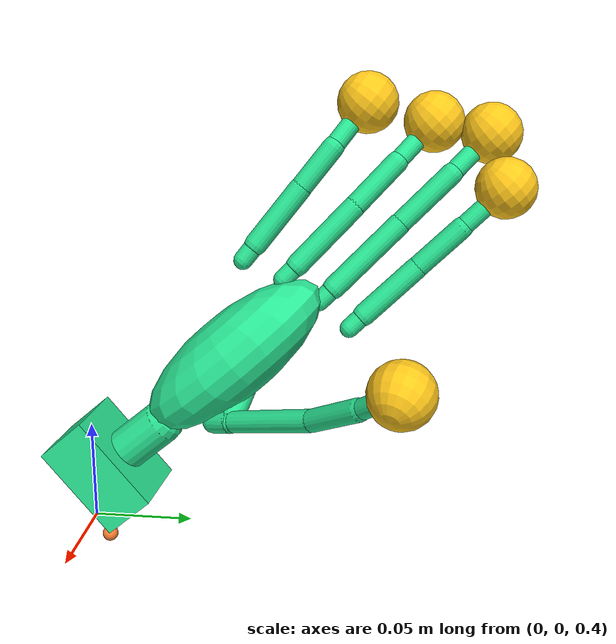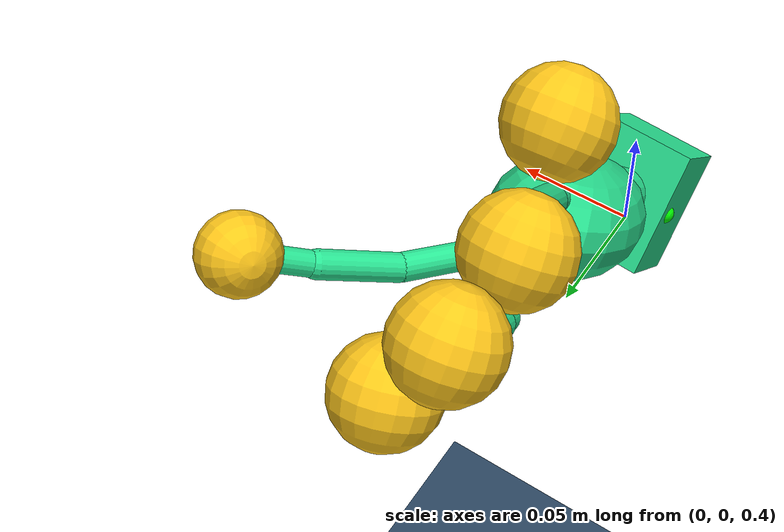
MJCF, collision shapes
<?xml version="1.0" encoding="utf-8"?>
<mujoco model="arm_hand_export4_joint_limit_tuned_scene">
  <include file="arm_hand_export4_joint_limit_tuned.xml"/>
  <statistic extent="0.9" center="0 0 0.22"/>
  <visual>
    <rgba haze="0.15 0.25 0.35 1"/>
    <quality shadowsize="8192"/>
    <global azimuth="205" elevation="-22" offwidth="1280" offheight="900"/>
  </visual>
  <asset>
    <texture type="skybox" builtin="gradient" rgb1="0.30 0.50 0.70" rgb2="0.00 0.00 0.00" width="512" height="3072"/>
    <texture type="2d" name="ground_checker" builtin="checker" mark="edge" rgb1="0.20 0.30 0.40" rgb2="0.10 0.20 0.30" markrgb="0.80 0.80 0.80" width="300" height="300"/>
    <material name="ground" texture="ground_checker" texrepeat="5 5" texuniform="true" reflectance="0.20"/>
  </asset>
  <worldbody>
    <light name="fill_light" pos="0 0 1"/>
    <light name="key_light" pos="0.3 0 1.5" dir="0 0 -1" directional="true"/>
    <geom name="floor" type="plane" pos="0 0 -0.12" size="0 0 0.05" material="ground" contype="0" conaffinity="4"/>
    <camera name="overview" pos="-0.62 -0.72 0.42" xyaxes="0.757769 -0.652523 0 0.147191 0.170932 0.974226" fovy="45"/>
  </worldbody>
</mujoco>

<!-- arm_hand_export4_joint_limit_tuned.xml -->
<mujoco model="arm_hand_export4_joint_limit_tuned">
  <compiler angle="radian" autolimits="true" />
  <option timestep="0.002" gravity="0 0 -9.81" />
  <visual>
    <global azimuth="205" elevation="-22" offwidth="1280" offheight="900" />
  </visual>
  <default>
    <joint damping="0.08" armature="0.0001" />
    <geom solref="0.01 1" solimp="0.9 0.95 0.001" />
  </default>
  <asset>
    <mesh name="base_link" content_type="model/stl" file="../../arm_stage1_export/meshes/base_link.STL" />
    <mesh name="link_1" content_type="model/stl" file="../../arm_stage1_export/meshes/link_1.STL" />
    <mesh name="link_2" content_type="model/stl" file="../../arm_stage1_export/meshes/link_2.STL" />
    <mesh name="link_3" content_type="model/stl" file="../../arm_stage1_export/meshes/link_3.STL" />
    <mesh name="ee_mount" content_type="model/stl" file="../../arm_stage1_export/meshes/ee_mount.STL" />
    <mesh name="hand_base_link_mesh" file="../../hand_stage1_export/meshes_export4/hand_base_link.STL" scale="1 1 1" />
    <mesh name="wrist_middle_link_mesh" file="../../hand_stage1_export/meshes_export4/wrist_middle_link.STL" scale="1 1 1" />
    <mesh name="palm_link_mesh" file="../../hand_stage1_export/meshes_export4/palm_link.STL" scale="1 1 1" />
    <mesh name="index_mcp_flex_link_mesh" file="../../hand_stage1_export/meshes_export4/index_mcp_flex_link.STL" scale="1 1 1" />
    <mesh name="index_proximal_phalanx_link_mesh" file="../../hand_stage1_export/meshes_export4/index_proximal_phalanx_link.STL" scale="1 1 1" />
    <mesh name="index_proximal_inter_link_mesh" file="../../hand_stage1_export/meshes_export4/index_proximal_inter_link.STL" scale="1 1 1" />
    <mesh name="index_distal_link_mesh" file="../../hand_stage1_export/meshes_export4/index_distal_link.STL" scale="1 1 1" />
    <mesh name="middle_mcp_flex_link_mesh" file="../../hand_stage1_export/meshes_export4/middle_mcp_flex_link.STL" scale="1 1 1" />
    <mesh name="middle_proximal_phalanx_link_mesh" file="../../hand_stage1_export/meshes_export4/middle_proximal_phalanx_link.STL" scale="1 1 1" />
    <mesh name="middle_proximal_inter_link_mesh" file="../../hand_stage1_export/meshes_export4/middle_proximal_inter_link.STL" scale="1 1 1" />
    <mesh name="middle_distal_link_mesh" file="../../hand_stage1_export/meshes_export4/middle_distal_link.STL" scale="1 1 1" />
    <mesh name="ring_mcp_flex_link_mesh" file="../../hand_stage1_export/meshes_export4/ring_mcp_flex_link.STL" scale="1 1 1" />
    <mesh name="ring_proximal_phalanx_link_mesh" file="../../hand_stage1_export/meshes_export4/ring_proximal_phalanx_link.STL" scale="1 1 1" />
    <mesh name="ring_proximal_inter_link_mesh" file="../../hand_stage1_export/meshes_export4/ring_proximal_inter_link.STL" scale="1 1 1" />
    <mesh name="ring_distal_link_mesh" file="../../hand_stage1_export/meshes_export4/ring_distal_link.STL" scale="1 1 1" />
    <mesh name="little_mcp_flex_link_mesh" file="../../hand_stage1_export/meshes_export4/little_mcp_flex_link.STL" scale="1 1 1" />
    <mesh name="little_proximal_phalanx_link_mesh" file="../../hand_stage1_export/meshes_export4/little_proximal_phalanx_link.STL" scale="1 1 1" />
    <mesh name="little_proximal_inter_link_mesh" file="../../hand_stage1_export/meshes_export4/little_proximal_inter_link.STL" scale="1 1 1" />
    <mesh name="little_distal_link_mesh" file="../../hand_stage1_export/meshes_export4/little_distal_link.STL" scale="1 1 1" />
    <mesh name="thumb_root_connector_link_mesh" file="../../hand_stage1_export/meshes_export4/thumb_root_connector_link.STL" scale="1 1 1" />
    <mesh name="thumb_trapezium1_link_mesh" file="../../hand_stage1_export/meshes_export4/thumb_trapezium1_link.STL" scale="1 1 1" />
    <mesh name="thumb_metacarpal_link_mesh" file="../../hand_stage1_export/meshes_export4/thumb_metacarpal_link.STL" scale="1 1 1" />
    <mesh name="thumb_proximal_link_mesh" file="../../hand_stage1_export/meshes_export4/thumb_proximal_link.STL" scale="1 1 1" />
    <mesh name="thumb_distal_link_mesh" file="../../hand_stage1_export/meshes_export4/thumb_distal_link.STL" scale="1 1 1" />
  </asset>
  <worldbody>
    <body name="base_link">
      <geom type="mesh" rgba="0.75294 0.75294 0.75294 1" mesh="base_link" contype="0" conaffinity="0" group="2" />
      <body name="link_1">
        <inertial pos="-0.00080533 0.00036071 0.12429" quat="0.980381 0.00856504 0.0465314 -0.191348" mass="0.21219" diaginertia="0.000359117 0.00030086 0.000220613" />
        <joint name="j1" pos="0 0 0" axis="0 0 1" range="-3.1416 3.1416" actuatorfrcrange="-40 40" damping="0.35" armature="0.01" frictionloss="0.02" />
        <geom type="mesh" rgba="0.75294 0.75294 0.75294 1" mesh="link_1" contype="0" conaffinity="0" group="2" />
        <body name="link_2" pos="-0.036371 0.014755 0.133" quat="0.694019 0.135411 0.694021 -0.135411">
          <inertial pos="-0.087672 -0.00423 0.039635" quat="-0.0143222 0.888828 0.0183859 0.457648" mass="0.22311" diaginertia="0.000321943 0.000302617 0.00022746" />
          <joint name="j2" pos="0 0 0" axis="0 0 -1" range="-1.5708 1.5708" actuatorfrcrange="-40 40" damping="0.35" armature="0.01" frictionloss="0.02" />
          <geom type="mesh" rgba="0.75294 0.75294 0.75294 1" mesh="link_2" contype="0" conaffinity="0" group="2" />
          <body name="link_3" pos="-0.13083 -0.0066553 0.039258" quat="0.697216 -0.153172 0.690318 -0.117851">
            <inertial pos="0.0048491 0.00031295 -0.064941" quat="0.999326 0.00100038 0.00348265 0.0365284" mass="0.16921" diaginertia="0.000277833 0.000267455 0.000120912" />
            <joint name="j3" pos="0 0 0" axis="0 0 1" range="-1.5708 1.5708" actuatorfrcrange="-40 40" damping="0.35" armature="0.01" frictionloss="0.02" />
            <geom type="mesh" rgba="0.75294 0.75294 0.75294 1" mesh="link_3" contype="0" conaffinity="0" group="2" />
            <body name="ee_mount" pos="0.054866 0.0045957 -0.1465" quat="0.70699 0.0462811 -0.705591 0.0128699">
              <inertial pos="-0.007089 0.0080757 0.041502" quat="0.413358 0.160944 -0.0901551 0.891686" mass="0.10378" diaginertia="5.41847e-05 4.45169e-05 3.71264e-05" />
              <joint name="j4" pos="0 0 0" axis="0 0 1" range="-3.1416 3.1416" actuatorfrcrange="-40 40" damping="0.35" armature="0.01" frictionloss="0.02" />
              <geom type="mesh" rgba="0.75294 0.75294 0.75294 1" mesh="ee_mount" contype="0" conaffinity="0" group="2" />
              <body name="ee_tool_frame" pos="0.02175 0.01956 0.05656" euler="-1.5708 0 -0.7854">
                <site name="ee_tool_frame_site" pos="0 0 0" size="0.004" rgba="1 0.5 0.2 1" />
              </body>
              <site name="cad_arm_flange_mount_origin" type="sphere" pos="-0.02088772184 0.02424258807 0.0550479998" size="0.006" rgba="1 0.45 0.05 1" />
              <site name="cad_arm_flange_mount_x" type="sphere" pos="-0.007253995046 0.03598958027 0.0546879053" size="0.004" rgba="1 0 0 1" />
              <site name="cad_arm_flange_mount_y" type="sphere" pos="-0.02116052255 0.02400753951 0.03705160205" size="0.004" rgba="0 1 0 1" />
              <site name="cad_arm_flange_mount_z" type="sphere" pos="-0.03263706537 0.03787904386 0.0550479998" size="0.004" rgba="0.05 0.2 1 1" />
              <body name="hand_base_link" pos="-0.02088772184 0.02424258807 0.0550479998" quat="0.2527988265 0.2395373043 -0.665298339 -0.6603731924">
                <inertial pos="0 0 0" mass="0.012576523" diaginertia="1e-5 1e-5 1e-5" />
                <geom name="hand_base_link_export4_visual" type="mesh" mesh="hand_base_link_mesh" pos="0 0 0" quat="1 0 0 0" rgba="0.792156862745098 0.819607843137255 0.933333333333333 1" contype="0" conaffinity="0" group="2" />
                <geom name="hand_base_link_collision_proxy" type="box" pos="0 0 -0.006" size="0.026 0.020 0.014" rgba="0.16 0.90 0.58 0.34" contype="1" conaffinity="2" group="3" />
                <body name="wrist_middle_link" pos="0 0 0.015" quat="0.021734468 0.031497148 -0.70640493 -0.70677267">
                  <joint name="wrist_1_joint" type="hinge" axis="0 0 -1" limited="true" range="-0.8 0.8" damping="0.08" armature="0.0001" />
                  <inertial pos="0 0 0" mass="0.010062493" diaginertia="1e-5 1e-5 1e-5" />
                  <geom name="wrist_middle_link_export4_visual" type="mesh" mesh="wrist_middle_link_mesh" pos="0 0 0" quat="1 0 0 0" rgba="0.792156862745098 0.819607843137255 0.933333333333333 1" contype="0" conaffinity="0" group="2" />
                  <geom name="wrist_middle_link_collision_proxy" type="capsule" fromto="0 -0.018 0 0 0.018 0" size="0.011" rgba="0.16 0.90 0.58 0.34" contype="1" conaffinity="2" group="3" />
                  <body name="palm_link" pos="-0.0008 0.020263937 -0.0007" quat="0.7042091 -0.063949537 -0.7042091 0.063949537">
                    <joint name="wrist_2_joint" type="hinge" axis="0 0 -1" limited="true" range="-0.8 0.8" damping="0.08" armature="0.0001" />
                    <inertial pos="0 0 0" mass="0.14137095" diaginertia="1e-5 1e-5 1e-5" />
                    <geom name="palm_link_export4_visual" type="mesh" mesh="palm_link_mesh" pos="0 0 0" quat="1 0 0 0" rgba="0.792156862745098 0.819607843137255 0.933333333333333 1" contype="0" conaffinity="0" group="2" />
                    <geom name="palm_link_collision_proxy_ellipsoid" type="ellipsoid" pos="0 0.048 0.002" size="0.026 0.054 0.021" rgba="0.16 0.90 0.58 0.30" contype="1" conaffinity="2" group="3" friction="0.9 0.04 0.001" />
                    <body name="index_mcp_flex_link" pos="-0.0014332629 0.1003371 -0.024802645" quat="0.70710678 0 0.70710678 0">
                      <joint name="index_mcp_flex_joint" type="hinge" axis="0 0 -1" limited="true" range="-0.3 0.18" damping="0.08" armature="0.0001" />
                      <inertial pos="0 0 0" mass="0.0017548052" diaginertia="1e-5 1e-5 1e-5" />
                      <geom name="index_mcp_flex_link_export4_visual" type="mesh" mesh="index_mcp_flex_link_mesh" pos="0 0 0" quat="1 0 0 0" rgba="0.792156862745098 0.819607843137255 0.933333333333333 1" contype="0" conaffinity="0" group="2" />
                      <geom name="index_mcp_flex_link_collision_proxy" type="capsule" fromto="0 0 0 -0.00051676254 0.0097416976 -0.00026673708" size="0.0048" rgba="0.16 0.90 0.58 0.34" contype="1" conaffinity="2" group="3" friction="0.9 0.04 0.001" />
                      <body name="index_proximal_phalanx_link" pos="-0.00051676254 0.0097416976 -0.00026673708" quat="0.70685854 -0.018735 0.70685854 0.018735">
                        <joint name="index_mcp_abd_joint" type="hinge" axis="0 0 -1" limited="true" range="-0.78 0.08" damping="0.08" armature="0.0001" />
                        <inertial pos="0 0 0" mass="0.0070310696" diaginertia="1e-5 1e-5 1e-5" />
                        <geom name="index_proximal_phalanx_link_export4_visual" type="mesh" mesh="index_proximal_phalanx_link_mesh" pos="0 0 0" quat="1 0 0 0" rgba="0.792156862745098 0.819607843137255 0.933333333333333 1" contype="0" conaffinity="0" group="2" />
                        <geom name="index_proximal_phalanx_link_collision_proxy" type="capsule" fromto="0 0 0 -0.00021096449 0.034999364 0.00025" size="0.0056" rgba="0.16 0.90 0.58 0.34" contype="1" conaffinity="2" group="3" friction="0.9 0.04 0.001" />
                        <body name="index_proximal_inter_link" pos="-0.00021096449 0.034999364 0.00025" quat="0.97605087 0.012185394 0.058843732 0.20907807">
                          <joint name="index_pip_joint" type="hinge" axis="0.109773553624728 -0.0483929965230635 -0.992777862772996" limited="true" range="-1.1 0.04" damping="0.08" armature="0.0001" />
                          <inertial pos="0 0 0" mass="0.0059704873" diaginertia="1e-5 1e-5 1e-5" />
                          <geom name="index_proximal_inter_link_export4_visual" type="mesh" mesh="index_proximal_inter_link_mesh" pos="0 0 0" quat="1 0 0 0" rgba="0.792156862745098 0.819607843137255 0.933333333333333 1" contype="0" conaffinity="0" group="2" />
                          <geom name="index_proximal_inter_link_collision_proxy" type="capsule" fromto="0 0 0 0.0097266332 0.027252107 -0.00045436552" size="0.0054" rgba="0.16 0.90 0.58 0.34" contype="1" conaffinity="2" group="3" friction="0.9 0.04 0.001" />
                          <body name="index_distal_link" pos="0.0097266332 0.027252107 -0.00045436552" quat="1 0 0 0">
                            <joint name="index_dip_joint" type="hinge" axis="0 0 -1" limited="true" range="-0.66 0.04" damping="0.08" armature="0.0001" />
                            <inertial pos="0 0 0" mass="0.0053528415" diaginertia="1e-5 1e-5 1e-5" />
                            <geom name="index_distal_link_export4_visual" type="mesh" mesh="index_distal_link_mesh" pos="0 0 0" quat="1 0 0 0" rgba="0.792156862745098 0.819607843137255 0.933333333333333 1" contype="0" conaffinity="0" group="2" />
                            <geom name="index_distal_link_collision_proxy" type="capsule" fromto="0 0 0 0.011092007 0.025709199 -6.7060969e-05" size="0.0048" rgba="0.16 0.90 0.58 0.34" contype="1" conaffinity="2" group="3" friction="0.9 0.04 0.001" />
                            <geom name="index_tip_collision_proxy_sphere" type="sphere" pos="0.011092007 0.025709199 -6.7060969e-05" size="0.015000" rgba="1.0 0.78 0.10 0.42" contype="1" conaffinity="2" group="3" friction="0.9 0.04 0.001" />
                            <site name="index_tip_site" pos="0.011092007 0.025709199 -6.7060969e-05" size="0.008" rgba="0.10 0.55 1.0 1" type="sphere" />
                          </body>
                        </body>
                      </body>
                    </body>
                    <body name="little_mcp_flex_link" pos="-0.0014332629 0.082348214 0.035197355" quat="0.70710678 0 0.70710678 0">
                      <joint name="little_mcp_flex_joint" type="hinge" axis="0 0 -1" limited="true" range="-0.28 0.16" damping="0.08" armature="0.0001" />
                      <inertial pos="0 0 0" mass="0.0017548056" diaginertia="1e-5 1e-5 1e-5" />
                      <geom name="little_mcp_flex_link_export4_visual" type="mesh" mesh="little_mcp_flex_link_mesh" pos="0 0 0" quat="1 0 0 0" rgba="0.792156862745098 0.819607843137255 0.933333333333333 1" contype="0" conaffinity="0" group="2" />
                      <geom name="little_mcp_flex_link_collision_proxy" type="capsule" fromto="0 0 0 -0.0018088145 0.0095862352 -0.00026673708" size="0.0048" rgba="0.16 0.90 0.58 0.34" contype="1" conaffinity="2" group="3" friction="0.9 0.04 0.001" />
                      <body name="little_proximal_phalanx_link" pos="-0.0018088145 0.0095862352 -0.00026673708" quat="0.4512713 0.4512713 0.54438425 0.54438425">
                        <joint name="little_mcp_abd_joint" type="hinge" axis="0 0 -1" limited="true" range="-0.76 0.08" damping="0.08" armature="0.0001" />
                        <inertial pos="0 0 0" mass="0.0070532455" diaginertia="1e-5 1e-5 1e-5" />
                        <geom name="little_proximal_phalanx_link_export4_visual" type="mesh" mesh="little_proximal_phalanx_link_mesh" pos="0 0 0" quat="1 0 0 0" rgba="0.792156862745098 0.819607843137255 0.933333333333333 1" contype="0" conaffinity="0" group="2" />
                        <geom name="little_proximal_phalanx_link_collision_proxy" type="capsule" fromto="0 0 0 0.034983 -0.0010805 -0.0003" size="0.0056" rgba="0.16 0.90 0.58 0.34" contype="1" conaffinity="2" group="3" friction="0.9 0.04 0.001" />
                        <body name="little_proximal_inter_link" pos="0.034983 -0.0010805 -0.0003" quat="0.70710548 0 0 -0.70710808">
                          <joint name="little_pip_joint" type="hinge" axis="0 0 -1" limited="true" range="-1 0.04" damping="0.08" armature="0.0001" />
                          <inertial pos="0 0 0" mass="0.0050879458" diaginertia="1e-5 1e-5 1e-5" />
                          <geom name="little_proximal_inter_link_export4_visual" type="mesh" mesh="little_proximal_inter_link_mesh" pos="0 0 0" quat="1 0 0 0" rgba="0.792156862745098 0.819607843137255 0.933333333333333 1" contype="0" conaffinity="0" group="2" />
                          <geom name="little_proximal_inter_link_collision_proxy" type="capsule" fromto="0 0 0 0.00077177 0.024988 -0.0002" size="0.0054" rgba="0.16 0.90 0.58 0.34" contype="1" conaffinity="2" group="3" friction="0.9 0.04 0.001" />
                          <body name="little_distal_link" pos="0.00077177 0.024988 -0.0002" quat="0.70710548 0 0 0.70710808">
                            <joint name="little_dip_joint" type="hinge" axis="0 0 -1" limited="true" range="-0.62 0.04" damping="0.08" armature="0.0001" />
                            <inertial pos="0 0 0" mass="0.0053522317" diaginertia="1e-5 1e-5 1e-5" />
                            <geom name="little_distal_link_export4_visual" type="mesh" mesh="little_distal_link_mesh" pos="0 0 0" quat="1 0 0 0" rgba="0.792156862745098 0.819607843137255 0.933333333333333 1" contype="0" conaffinity="0" group="2" />
                            <geom name="little_distal_link_collision_proxy" type="capsule" fromto="0 0 0 0.026961146 -0.0075560895 -4.619485e-05" size="0.0048" rgba="0.16 0.90 0.58 0.34" contype="1" conaffinity="2" group="3" friction="0.9 0.04 0.001" />
                            <geom name="little_tip_collision_proxy_sphere" type="sphere" pos="0.026961146 -0.0075560895 -4.619485e-05" size="0.015000" rgba="1.0 0.78 0.10 0.42" contype="1" conaffinity="2" group="3" friction="0.9 0.04 0.001" />
                            <site name="little_tip_site" pos="0.026961146 -0.0075560895 -4.619485e-05" size="0.008" rgba="0.10 0.55 1.0 1" type="sphere" />
                          </body>
                        </body>
                      </body>
                    </body>
                    <body name="middle_mcp_flex_link" pos="-0.0014332629 0.097567248 -0.0048026451" quat="0.70710678 0 0.70710678 0">
                      <joint name="middle_mcp_flex_joint" type="hinge" axis="0 0 -1" limited="true" range="-0.3 0.18" damping="0.08" armature="0.0001" />
                      <inertial pos="0 0 0" mass="0.0017548053" diaginertia="1e-5 1e-5 1e-5" />
                      <geom name="middle_mcp_flex_link_export4_visual" type="mesh" mesh="middle_mcp_flex_link_mesh" pos="0 0 0" quat="1 0 0 0" rgba="0.792156862745098 0.819607843137255 0.933333333333333 1" contype="0" conaffinity="0" group="2" />
                      <geom name="middle_mcp_flex_link_collision_proxy" type="capsule" fromto="0 0 0 -0.00064254397 0.0097342104 -0.00026673708" size="0.0048" rgba="0.16 0.90 0.58 0.34" contype="1" conaffinity="2" group="3" friction="0.9 0.04 0.001" />
                      <body name="middle_proximal_phalanx_link" pos="-0.00064254397 0.0097342104 -0.00026673708" quat="0.48325317 0.48325317 0.51620381 0.51620381">
                        <joint name="middle_mcp_abd_joint" type="hinge" axis="0 0 -1" limited="true" range="-0.86 0.08" damping="0.08" armature="0.0001" />
                        <inertial pos="0 0 0" mass="0.0090532579" diaginertia="1e-5 1e-5 1e-5" />
                        <geom name="middle_proximal_phalanx_link_export4_visual" type="mesh" mesh="middle_proximal_phalanx_link_mesh" pos="0 0 0" quat="1 0 0 0" rgba="0.792156862745098 0.819607843137255 0.933333333333333 1" contype="0" conaffinity="0" group="2" />
                        <geom name="middle_proximal_phalanx_link_collision_proxy" type="capsule" fromto="0 0 0 0.044915416 -0.0027577974 -0.0003" size="0.0056" rgba="0.16 0.90 0.58 0.34" contype="1" conaffinity="2" group="3" friction="0.9 0.04 0.001" />
                        <body name="middle_proximal_inter_link" pos="0.044915416 -0.0027577974 -0.0003" quat="1 0 0 0">
                          <joint name="middle_pip_joint" type="hinge" axis="0 0 -1" limited="true" range="-1.16 0.04" damping="0.08" armature="0.0001" />
                          <inertial pos="0 0 0" mass="0.0073249127" diaginertia="1e-5 1e-5 1e-5" />
                          <geom name="middle_proximal_inter_link_export4_visual" type="mesh" mesh="middle_proximal_inter_link_mesh" pos="0 0 0" quat="1 0 0 0" rgba="0.792156862745098 0.819607843137255 0.933333333333333 1" contype="0" conaffinity="0" group="2" />
                          <geom name="middle_proximal_inter_link_collision_proxy" type="capsule" fromto="0 0 0 0.03498049 -0.0011684823 -0.0002" size="0.0054" rgba="0.16 0.90 0.58 0.34" contype="1" conaffinity="2" group="3" friction="0.9 0.04 0.001" />
                          <body name="middle_distal_link" pos="0.03498049 -0.0011684823 -0.0002" quat="1 0 0 0">
                            <joint name="middle_dip_joint" type="hinge" axis="0 0 -1" limited="true" range="-0.7 0.04" damping="0.08" armature="0.0001" />
                            <inertial pos="0 0 0" mass="0.0053530376" diaginertia="1e-5 1e-5 1e-5" />
                            <geom name="middle_distal_link_export4_visual" type="mesh" mesh="middle_distal_link_mesh" pos="0 0 0" quat="1 0 0 0" rgba="0.792156862745098 0.819607843137255 0.933333333333333 1" contype="0" conaffinity="0" group="2" />
                            <geom name="middle_distal_link_collision_proxy" type="capsule" fromto="0 0 0 0.027301483 -0.006215095 -4.054405e-05" size="0.0048" rgba="0.16 0.90 0.58 0.34" contype="1" conaffinity="2" group="3" friction="0.9 0.04 0.001" />
                            <geom name="middle_tip_collision_proxy_sphere" type="sphere" pos="0.027301483 -0.006215095 -4.054405e-05" size="0.015000" rgba="1.0 0.78 0.10 0.42" contype="1" conaffinity="2" group="3" friction="0.9 0.04 0.001" />
                            <site name="middle_tip_site" pos="0.027301483 -0.006215095 -4.054405e-05" size="0.008" rgba="0.10 0.55 1.0 1" type="sphere" />
                          </body>
                        </body>
                      </body>
                    </body>
                    <body name="ring_mcp_flex_link" pos="-0.0014333 0.090989 0.015197" quat="0.70710548 0 0.70710808 0">
                      <joint name="ring_mcp_flex_joint" type="hinge" axis="-0.996 -0.089367 0" limited="true" range="-0.3 0.18" damping="0.08" armature="0.0001" />
                      <inertial pos="0 0 0" mass="0.0017548053" diaginertia="1e-5 1e-5 1e-5" />
                      <geom name="ring_mcp_flex_link_export4_visual" type="mesh" mesh="ring_mcp_flex_link_mesh" pos="0 0 0" quat="1 0 0 0" rgba="0.792156862745098 0.819607843137255 0.933333333333333 1" contype="0" conaffinity="0" group="2" />
                      <geom name="ring_mcp_flex_link_collision_proxy" type="capsule" fromto="0 0 0 -0.00087180699 0.0097163608 -0.00026673708" size="0.0048" rgba="0.16 0.90 0.58 0.34" contype="1" conaffinity="2" group="3" friction="0.9 0.04 0.001" />
                      <body name="ring_proximal_phalanx_link" pos="-0.00087180699 0.0097163608 -0.00026673708" quat="0.47713555 0.47713555 0.52186365 0.52186365">
                        <joint name="ring_mcp_abd_joint" type="hinge" axis="0 0 -1" limited="true" range="-0.84 0.08" damping="0.08" armature="0.0001" />
                        <inertial pos="0 0 0" mass="0.0079217428" diaginertia="1e-5 1e-5 1e-5" />
                        <geom name="ring_proximal_phalanx_link_export4_visual" type="mesh" mesh="ring_proximal_phalanx_link_mesh" pos="0 0 0" quat="1 0 0 0" rgba="0.792156862745098 0.819607843137255 0.933333333333333 1" contype="0" conaffinity="0" group="2" />
                        <geom name="ring_proximal_phalanx_link_collision_proxy" type="capsule" fromto="0 0 0 0.039933 -0.0023102 -0.0003" size="0.0056" rgba="0.16 0.90 0.58 0.34" contype="1" conaffinity="2" group="3" friction="0.9 0.04 0.001" />
                        <body name="ring_proximal_inter_link" pos="0.039933 -0.0023102 -0.0003" quat="0.70710548 0 0 -0.70710808">
                          <joint name="ring_pip_joint" type="hinge" axis="0 0 -1" limited="true" range="-1.1 0.04" damping="0.08" armature="0.0001" />
                          <inertial pos="0 0 0" mass="0.0062089763" diaginertia="1e-5 1e-5 1e-5" />
                          <geom name="ring_proximal_inter_link_export4_visual" type="mesh" mesh="ring_proximal_inter_link_mesh" pos="0 0 0" quat="1 0 0 0" rgba="0.792156862745098 0.819607843137255 0.933333333333333 1" contype="0" conaffinity="0" group="2" />
                          <geom name="ring_proximal_inter_link_collision_proxy" type="capsule" fromto="0 0 0 0.0039742641 0.029735589 -0.0002" size="0.0054" rgba="0.16 0.90 0.58 0.34" contype="1" conaffinity="2" group="3" friction="0.9 0.04 0.001" />
                          <body name="ring_distal_link" pos="0.0039742641 0.029735589 -0.0002" quat="0.70710678 0 0 0.70710678">
                            <joint name="ring_dip_joint" type="hinge" axis="0 0 -1" limited="true" range="-0.68 0.04" damping="0.08" armature="0.0001" />
                            <inertial pos="0 0 0" mass="0.0053519063" diaginertia="1e-5 1e-5 1e-5" />
                            <geom name="ring_distal_link_export4_visual" type="mesh" mesh="ring_distal_link_mesh" pos="0 0 0" quat="1 0 0 0" rgba="0.792156862745098 0.819607843137255 0.933333333333333 1" contype="0" conaffinity="0" group="2" />
                            <geom name="ring_distal_link_collision_proxy" type="capsule" fromto="0 0 0 0.026733217 -0.0083266507 -4.4813101e-05" size="0.0048" rgba="0.16 0.90 0.58 0.34" contype="1" conaffinity="2" group="3" friction="0.9 0.04 0.001" />
                            <geom name="ring_tip_collision_proxy_sphere" type="sphere" pos="0.026733217 -0.0083266507 -4.4813101e-05" size="0.015000" rgba="1.0 0.78 0.10 0.42" contype="1" conaffinity="2" group="3" friction="0.9 0.04 0.001" />
                            <site name="ring_tip_site" pos="0.026733217 -0.0083266507 -4.4813101e-05" size="0.008" rgba="0.10 0.55 1.0 1" type="sphere" />
                          </body>
                        </body>
                      </body>
                    </body>
                    <body name="thumb_root_connector_link" pos="0.0064687769 0.019331857 -0.016418226" quat="0.24714875 -0.24714875 -0.53303917 0.77052205">
                      <inertial pos="0 0 0" mass="0.0018183" diaginertia="1e-5 1e-5 1e-5" />
                      <geom name="thumb_root_connector_link_export4_visual" type="mesh" mesh="thumb_root_connector_link_mesh" pos="0 0 0" quat="1 0 0 0" rgba="0.79216 0.81961 0.93333 1" contype="0" conaffinity="0" group="2" />
                      <geom name="thumb_root_connector_link_collision_proxy" type="capsule" fromto="0 0 0 -6.3364e-05 0.00012377 -0.011586" size="0.0058" rgba="0.16 0.90 0.58 0.34" contype="1" conaffinity="2" group="3" friction="0.9 0.04 0.001" />
                      <body name="thumb_trapezium1_link" pos="-6.3364e-05 0.00012377 -0.011586" quat="-0.17341937 -0.36522812 -0.60548304 0.68551034">
                        <joint name="thumb_cmc_abd_joint" type="hinge" axis="0 0 -1" limited="true" range="-1.05 1.05" damping="0.08" armature="0.0001" />
                        <inertial pos="0 0 0" mass="0.001" diaginertia="1e-5 1e-5 1e-5" />
                        <geom name="thumb_trapezium1_link_export4_visual" type="mesh" mesh="thumb_trapezium1_link_mesh" pos="0 0 0" quat="1 0 0 0" rgba="0.792156862745098 0.819607843137255 0.933333333333333 1" contype="0" conaffinity="0" group="2" />
                        <geom name="thumb_trapezium1_link_collision_proxy" type="capsule" fromto="0 0 0 -0.023394532 0.015361599 -0.00084684352" size="0.0058" rgba="0.16 0.90 0.58 0.34" contype="1" conaffinity="2" group="3" friction="0.9 0.04 0.001" />
                        <body name="thumb_metacarpal_link" pos="0 0 0" quat="0.60495967 -0.15982858 -0.68880723 -0.36609183">
                          <joint name="thumb_cmc_joint" type="hinge" axis="0 0 -1" limited="true" range="-0.95 0.95" damping="0.08" armature="0.0001" />
                          <inertial pos="0 0 0" mass="0.012375" diaginertia="1e-5 1e-5 1e-5" />
                          <geom name="thumb_metacarpal_link_export4_visual" type="mesh" mesh="thumb_metacarpal_link_mesh" pos="0 0 0" quat="1 0 0 0" rgba="0.79216 0.81961 0.93333 1" contype="0" conaffinity="0" group="2" />
                          <geom name="thumb_metacarpal_link_collision_proxy" type="capsule" fromto="0 0 0 -0.016224 0.049404 -0.000175" size="0.0054" rgba="0.16 0.90 0.58 0.34" contype="1" conaffinity="2" group="3" friction="0.9 0.04 0.001" />
                          <body name="thumb_proximal_link" pos="-0.016224 0.049404 -0.000175" quat="1 0 0 0">
                            <joint name="thumb_mcp_joint" type="hinge" axis="0 0 -1" limited="true" range="-0.1 1.2" damping="0.08" armature="0.0001" />
                            <inertial pos="0 0 0" mass="0.0062816" diaginertia="1e-5 1e-5 1e-5" />
                            <geom name="thumb_proximal_link_export4_visual" type="mesh" mesh="thumb_proximal_link_mesh" pos="0 0 0" quat="1 0 0 0" rgba="0.79216 0.81961 0.93333 1" contype="0" conaffinity="0" group="2" />
                            <geom name="thumb_proximal_link_collision_proxy" type="capsule" fromto="0 0 0 -0.0033345 0.031826 -0.000105" size="0.0054" rgba="0.16 0.90 0.58 0.34" contype="1" conaffinity="2" group="3" friction="0.9 0.04 0.001" />
                            <body name="thumb_distal_link" pos="-0.0033345 0.031826 -0.000105" quat="-3.6732051e-06 -0 0 1">
                              <joint name="thumb_ip_joint" type="hinge" axis="0 0 1" limited="true" range="-0.85 0.05" damping="0.08" armature="0.0001" />
                              <inertial pos="0 0 0" mass="0.0073168" diaginertia="1e-5 1e-5 1e-5" />
                              <geom name="thumb_distal_link_export4_visual" type="mesh" mesh="thumb_distal_link_mesh" pos="0 0 0" quat="1 0 0 0" rgba="0.79216 0.81961 0.93333 1" contype="0" conaffinity="0" group="2" />
                              <geom name="thumb_distal_link_collision_proxy" type="capsule" fromto="0 0 0 0.00052061935 -0.027995157 -1.2280723e-05" size="0.0048" rgba="0.16 0.90 0.58 0.34" contype="1" conaffinity="2" group="3" friction="0.9 0.04 0.001" />
                              <geom name="thumb_tip_collision_proxy_sphere" type="sphere" pos="0.00052061935 -0.027995157 -1.2280723e-05" size="0.015000" rgba="1.0 0.78 0.10 0.42" contype="1" conaffinity="2" group="3" friction="0.9 0.04 0.001" />
                              <site name="thumb_tip_site" pos="0.00052061935 -0.027995157 -1.2280723e-05" size="0.008" rgba="0.10 0.55 1.0 1" type="sphere" />
                            </body>
                          </body>
                        </body>
                      </body>
                    </body>
                  </body>
                </body>
                <site name="cad_hand_wrist_mount_origin" type="sphere" pos="-6.938893904e-18 0 0" size="0.006" rgba="1 0.45 0.05 1" />
                <site name="cad_hand_wrist_mount_x" type="sphere" pos="-0.014 -7.193219292e-20 -1.396197e-20" size="0.004" rgba="1 0 0 1" />
                <site name="cad_hand_wrist_mount_y" type="sphere" pos="-7.186334386e-18 -0.014 7.19427076e-20" size="0.004" rgba="0 1 0 1" />
                <site name="cad_hand_wrist_mount_z" type="sphere" pos="-6.938493521e-18 3.917583132e-19 0.014" size="0.004" rgba="0.05 0.2 1 1" />
              </body>
            </body>
          </body>
        </body>
      </body>
    </body>
  </worldbody>
  <actuator>
    <position name="a_j1" joint="j1" ctrlrange="-3.1416 3.1416" kp="40" forcerange="-40 40" />
    <position name="a_j2" joint="j2" ctrlrange="-1.5708 1.5708" kp="30" forcerange="-40 40" />
    <position name="a_j3" joint="j3" ctrlrange="-1.5708 1.5708" kp="25" forcerange="-40 40" />
    <position name="a_j4" joint="j4" ctrlrange="-3.1416 3.1416" kp="20" forcerange="-40 40" />
    <position name="wrist_1_joint_pos" joint="wrist_1_joint" kp="5" ctrllimited="true" ctrlrange="-0.8 0.8" />
    <position name="wrist_2_joint_pos" joint="wrist_2_joint" kp="5" ctrllimited="true" ctrlrange="-0.8 0.8" />
    <position name="index_mcp_flex_joint_pos" joint="index_mcp_flex_joint" kp="3" ctrllimited="true" ctrlrange="-0.3 0.18" />
    <position name="index_mcp_abd_joint_pos" joint="index_mcp_abd_joint" kp="3" ctrllimited="true" ctrlrange="-0.78 0.08" />
    <position name="index_pip_joint_pos" joint="index_pip_joint" kp="2" ctrllimited="true" ctrlrange="-1.1 0.04" />
    <position name="index_dip_joint_pos" joint="index_dip_joint" kp="2" ctrllimited="true" ctrlrange="-0.66 0.04" />
    <position name="middle_mcp_flex_joint_pos" joint="middle_mcp_flex_joint" kp="3" ctrllimited="true" ctrlrange="-0.3 0.18" />
    <position name="middle_mcp_abd_joint_pos" joint="middle_mcp_abd_joint" kp="3" ctrllimited="true" ctrlrange="-0.86 0.08" />
    <position name="middle_pip_joint_pos" joint="middle_pip_joint" kp="2" ctrllimited="true" ctrlrange="-1.16 0.04" />
    <position name="middle_dip_joint_pos" joint="middle_dip_joint" kp="2" ctrllimited="true" ctrlrange="-0.7 0.04" />
    <position name="ring_mcp_flex_joint_pos" joint="ring_mcp_flex_joint" kp="3" ctrllimited="true" ctrlrange="-0.3 0.18" />
    <position name="ring_mcp_abd_joint_pos" joint="ring_mcp_abd_joint" kp="3" ctrllimited="true" ctrlrange="-0.84 0.08" />
    <position name="ring_pip_joint_pos" joint="ring_pip_joint" kp="2" ctrllimited="true" ctrlrange="-1.1 0.04" />
    <position name="ring_dip_joint_pos" joint="ring_dip_joint" kp="2" ctrllimited="true" ctrlrange="-0.68 0.04" />
    <position name="little_mcp_flex_joint_pos" joint="little_mcp_flex_joint" kp="3" ctrllimited="true" ctrlrange="-0.28 0.16" />
    <position name="little_mcp_abd_joint_pos" joint="little_mcp_abd_joint" kp="3" ctrllimited="true" ctrlrange="-0.76 0.08" />
    <position name="little_pip_joint_pos" joint="little_pip_joint" kp="2" ctrllimited="true" ctrlrange="-1 0.04" />
    <position name="little_dip_joint_pos" joint="little_dip_joint" kp="2" ctrllimited="true" ctrlrange="-0.62 0.04" />
    <position name="thumb_cmc_abd_joint_pos" joint="thumb_cmc_abd_joint" kp="2" ctrllimited="true" ctrlrange="-1.05 1.05" />
    <position name="thumb_cmc_joint_pos" joint="thumb_cmc_joint" kp="2" ctrllimited="true" ctrlrange="-0.95 0.95" />
    <position name="thumb_mcp_joint_pos" joint="thumb_mcp_joint" kp="3" ctrllimited="true" ctrlrange="-0.1 1.2" />
    <position name="thumb_ip_joint_pos" joint="thumb_ip_joint" kp="2" ctrllimited="true" ctrlrange="-0.85 0.05" />
  </actuator>
</mujoco>
